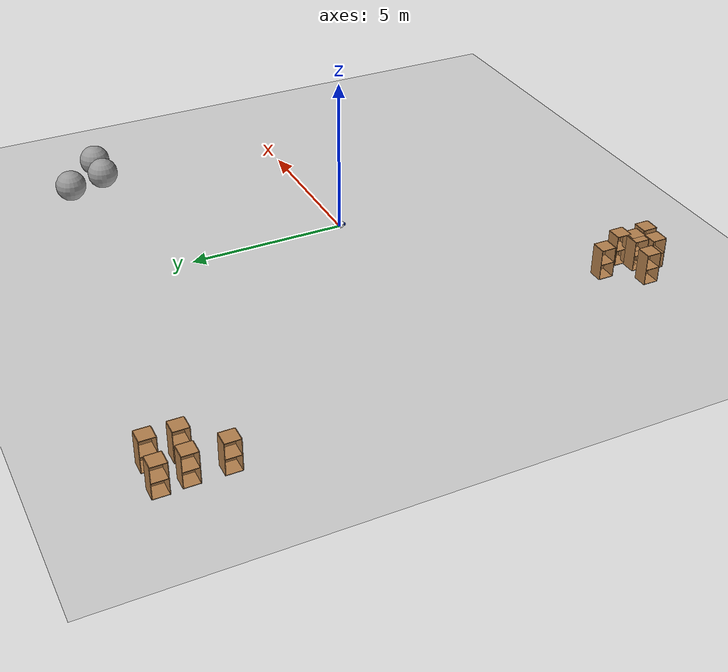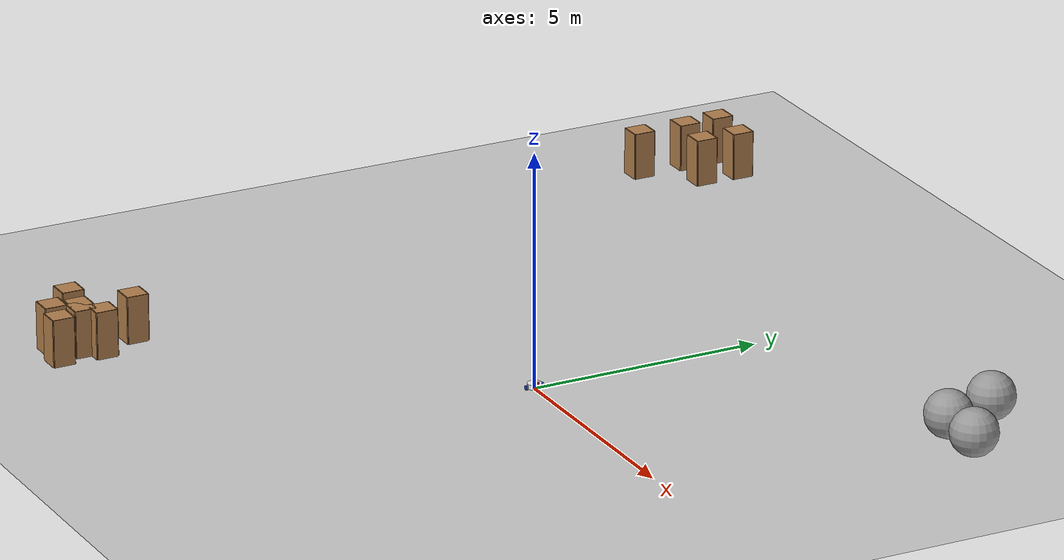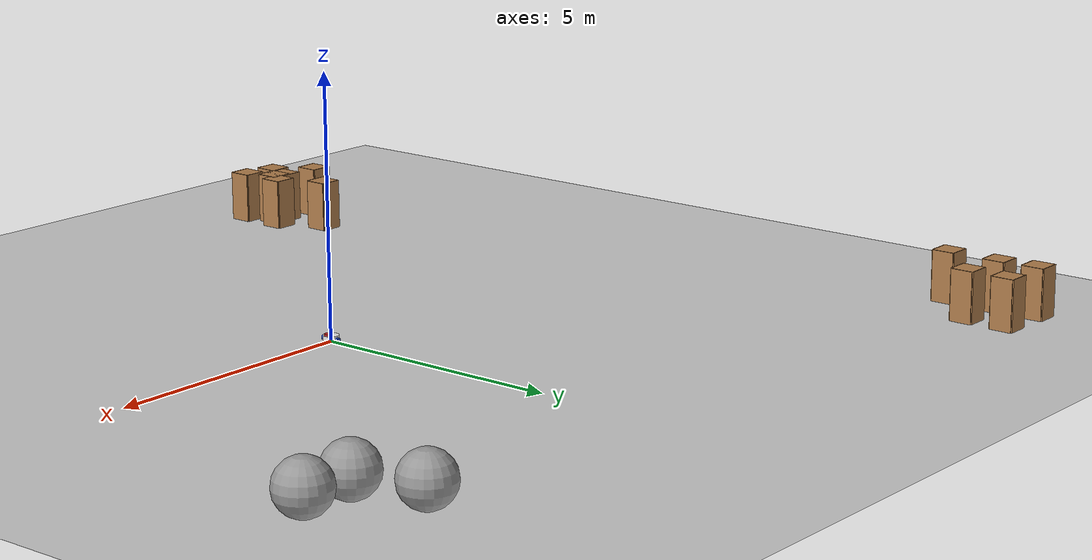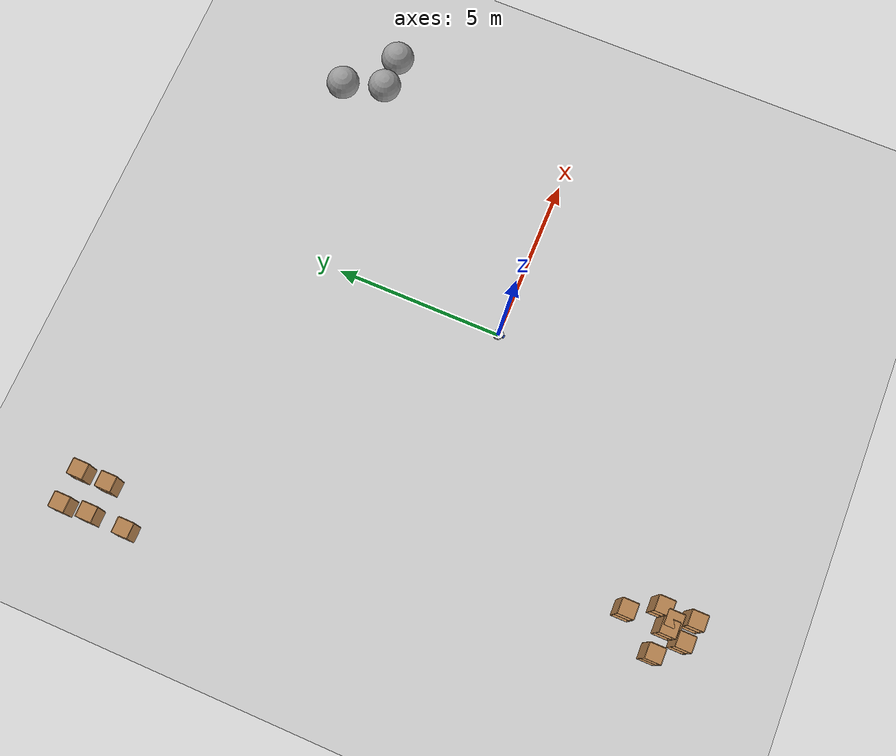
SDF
<sdf version="1.7">
 <world name="default">
  <light name="sun" type="directional">
   <pose>0 0 10 0 -0 0</pose>
   <diffuse>0.8 0.8 0.8 1</diffuse>
   <specular>0.2 0.2 0.2 1</specular>
   <attenuation>
    <range>1000</range>
    <constant>0.9</constant>
    <linear>0.01</linear>
    <quadratic>0.001</quadratic>
   </attenuation>
   <direction>-0.5 0.1 -0.9</direction>
   <spot><inner_angle>0</inner_angle><outer_angle>0</outer_angle><falloff>0</falloff></spot>
  </light>
  <model name="ground_plane">
   <static>1</static>
   <link name="link">
    <collision name="collision">
     <geometry><plane><normal>0 0 1</normal><size>100 100</size></plane></geometry>
     <surface>
      <contact><collide_bitmask>65535</collide_bitmask></contact>
      <friction><ode><mu>100</mu><mu2>50</mu2></ode></friction>
     </surface>
    </collision>
    <visual name="visual">
     <cast_shadows>0</cast_shadows>
     <geometry><plane><normal>0 0 1</normal><size>100 100</size></plane></geometry>
     <material>
      <script><uri>file://media/materials/scripts/gazebo.material</uri><name>Gazebo/Grey</name></script>
     </material>
    </visual>
   </link>
  </model>
  <gravity>0 0 -9.8</gravity>
  <magnetic_field>6e-06 2.3e-05 -4.2e-05</magnetic_field>
  <atmosphere type="adiabatic"/>
  <physics type="ode">
   <max_step_size>0.001</max_step_size>
   <real_time_factor>1</real_time_factor>
   <real_time_update_rate>1000</real_time_update_rate>
  </physics>
  <scene><ambient>0.4 0.4 0.4 1</ambient><background>0.7 0.7 0.7 1</background><shadows>1</shadows></scene>
  <audio><device>default</device></audio>
  <spherical_coordinates>
   <surface_model>EARTH_WGS84</surface_model>
   <latitude_deg>0</latitude_deg>
   <longitude_deg>0</longitude_deg>
   <elevation>0</elevation>
   <heading_deg>0</heading_deg>
  </spherical_coordinates>
  <model name="captain_robot">
   <link name="base_link">
    <inertial>
     <pose>0.0125 0 0.028125 0 -0 0</pose>
     <mass>0.8</mass>
     <inertia>
      <ixx>0.00418469</ixx>
      <ixy>0</ixy>
      <ixz>-0.00071875</ixz>
      <iyy>0.00705969</iyy>
      <iyz>0</iyz>
      <izz>0.008825</izz>
     </inertia>
    </inertial>
    <collision name="base_link_fixed_joint_lump__caster_wheel_b_collision">
     <pose>-0.1 0 0 0 -0 0</pose>
     <geometry><sphere><radius>0.05</radius></sphere></geometry>
     <surface><friction><ode><mu>0.001</mu><mu2>0.001</mu2></ode></friction></surface>
    </collision>
    <collision name="base_link_fixed_joint_lump__caster_wheel_f_collision_1">
     <pose>0.1 0 0 0 -0 0</pose>
     <geometry><sphere><radius>0.05</radius></sphere></geometry>
     <surface><friction><ode><mu>0.001</mu><mu2>0.001</mu2></ode></friction></surface>
    </collision>
    <collision name="base_link_fixed_joint_lump__chassis_collision_2">
     <pose>0 0 0.025 0 -0 0</pose>
     <geometry><cylinder><length>0.1</length><radius>0.15</radius></cylinder></geometry>
    </collision>
    <collision name="base_link_fixed_joint_lump__laser_frame_collision_3">
     <pose>0.1 0 0.1 0 -0 0</pose>
     <geometry><cylinder><length>0.04</length><radius>0.05</radius></cylinder></geometry>
    </collision>
    <visual name="base_link_fixed_joint_lump__caster_wheel_b_visual">
     <pose>-0.1 0 0 0 -0 0</pose>
     <geometry><sphere><radius>0.05</radius></sphere></geometry>
     <material>
      <script><name>Gazebo/Black</name><uri>file://media/materials/scripts/gazebo.material</uri></script>
     </material>
    </visual>
    <visual name="base_link_fixed_joint_lump__caster_wheel_f_visual_1">
     <pose>0.1 0 0 0 -0 0</pose>
     <geometry><sphere><radius>0.05</radius></sphere></geometry>
     <material>
      <script><name>Gazebo/Black</name><uri>file://media/materials/scripts/gazebo.material</uri></script>
     </material>
    </visual>
    <visual name="base_link_fixed_joint_lump__chassis_visual_2">
     <pose>0 0 0.025 0 -0 0</pose>
     <geometry><cylinder><length>0.1</length><radius>0.15</radius></cylinder></geometry>
     <material>
      <script><name>Gazebo/White</name><uri>file://media/materials/scripts/gazebo.material</uri></script>
     </material>
    </visual>
    <visual name="base_link_fixed_joint_lump__laser_frame_visual_3">
     <pose>0.1 0 0.1 0 -0 0</pose>
     <geometry><cylinder><length>0.04</length><radius>0.05</radius></cylinder></geometry>
     <material>
      <script><name>Gazebo/Red</name><uri>file://media/materials/scripts/gazebo.material</uri></script>
     </material>
    </visual>
    <sensor name="laser" type="ray">
     <visualize>1</visualize>
     <update_rate>10</update_rate>
     <ray>
      <scan>
       <horizontal>
        <samples>360</samples>
        <min_angle>-3.14</min_angle>
        <max_angle>3.14</max_angle>
        <resolution>1</resolution>
       </horizontal>
       <vertical><samples>1</samples><min_angle>0</min_angle><max_angle>0</max_angle></vertical>
      </scan>
      <range><min>0.3</min><max>12</max></range>
     </ray>
     <plugin name="laser_controller" filename="libgazebo_ros_ray_sensor.so">
      <ros><argument>--ros-args --remap ~/out:=scan</argument></ros>
      <output_type>sensor_msgs/LaserScan</output_type>
      <frame_name>laser_frame</frame_name>
     </plugin>
     <pose>0.1 0 0.1 0 -0 0</pose>
    </sensor>
   </link>
   <joint name="left_wheel_joint" type="revolute">
    <pose relative_to="base_link">0 0.175 0 -1.5708 0 0</pose>
    <parent>base_link</parent>
    <child>left_wheel</child>
    <axis>
     <xyz>0 0 1</xyz>
     <limit><lower>-1e+16</lower><upper>1e+16</upper></limit>
     <dynamics><spring_reference>0</spring_reference><spring_stiffness>0</spring_stiffness></dynamics>
    </axis>
   </joint>
   <link name="left_wheel">
    <pose relative_to="left_wheel_joint">0 0 0 0 -0 0</pose>
    <inertial>
     <mass>0.1</mass>
     <inertia>
      <ixx>7.58333e-05</ixx>
      <ixy>0</ixy>
      <ixz>0</ixz>
      <iyy>7.58333e-05</iyy>
      <iyz>0</iyz>
      <izz>0.000125</izz>
     </inertia>
    </inertial>
    <collision name="left_wheel_collision">
     <geometry><cylinder><length>0.04</length><radius>0.05</radius></cylinder></geometry>
    </collision>
    <visual name="left_wheel_visual">
     <geometry><cylinder><length>0.04</length><radius>0.05</radius></cylinder></geometry>
     <material>
      <script><name>Gazebo/Blue</name><uri>file://media/materials/scripts/gazebo.material</uri></script>
     </material>
    </visual>
   </link>
   <joint name="right_wheel_joint" type="revolute">
    <pose relative_to="base_link">0 -0.175 0 1.5708 -0 0</pose>
    <parent>base_link</parent>
    <child>right_wheel</child>
    <axis>
     <xyz>0 0 -1</xyz>
     <limit><lower>-1e+16</lower><upper>1e+16</upper></limit>
     <dynamics><spring_reference>0</spring_reference><spring_stiffness>0</spring_stiffness></dynamics>
    </axis>
   </joint>
   <link name="right_wheel">
    <pose relative_to="right_wheel_joint">0 0 0 0 -0 0</pose>
    <inertial>
     <mass>0.1</mass>
     <inertia>
      <ixx>7.58333e-05</ixx>
      <ixy>0</ixy>
      <ixz>0</ixz>
      <iyy>7.58333e-05</iyy>
      <iyz>0</iyz>
      <izz>0.000125</izz>
     </inertia>
    </inertial>
    <collision name="right_wheel_collision">
     <geometry><cylinder><length>0.04</length><radius>0.05</radius></cylinder></geometry>
    </collision>
    <visual name="right_wheel_visual">
     <geometry><cylinder><length>0.04</length><radius>0.05</radius></cylinder></geometry>
     <material>
      <script><name>Gazebo/Blue</name><uri>file://media/materials/scripts/gazebo.material</uri></script>
     </material>
    </visual>
   </link>
   <static>0</static>
   <plugin name="gazebo_ros2_control" filename="libgazebo_ros2_control.so">
    <parameters>/home/ran/robot_ws/src/captain-robot/config/my_controllers.yaml</parameters>
   </plugin>
   <pose>-1e-06 0.000475 0.05 -0 -0 -7.4e-05</pose>
  </model>
  <model name="cabinet">
   <static>1</static>
   <link name="cabinet_bottom_plate">
    <inertial>
     <pose>0 0 -1 0 -0 0</pose>
     <inertia><ixx>2.05</ixx><ixy>0</ixy><ixz>0</ixz><iyy>2.05</iyy><iyz>0</iyz><izz>2.05</izz></inertia>
     <mass>25</mass>
    </inertial>
    <collision name="cabinet_bottom_plate_geom">
     <pose>0 0 0.01 0 -0 0</pose>
     <geometry><box><size>0.45 0.45 0.02</size></box></geometry>
    </collision>
    <visual name="cabinet_bottom_plate_geom_visual">
     <pose>0 0 0.01 0 -0 0</pose>
     <geometry><box><size>0.45 0.45 0.02</size></box></geometry>
     <material>
      <script><uri>file://media/materials/scripts/gazebo.material</uri><name>Gazebo/Wood</name></script>
     </material>
    </visual>
    <collision name="cabinet_bottom_plate_geom_cabinet_back_plate">
     <pose>0.235 0 0.51 0 -0 0</pose>
     <geometry><box><size>0.02 0.45 1.02</size></box></geometry>
    </collision>
    <visual name="cabinet_bottom_plate_geom_cabinet_back_plate_visual">
     <pose>0.235 0 0.51 0 -0 0</pose>
     <geometry><box><size>0.02 0.45 1.02</size></box></geometry>
     <material>
      <script><uri>file://media/materials/scripts/gazebo.material</uri><name>Gazebo/Wood</name></script>
     </material>
    </visual>
    <collision name="cabinet_bottom_plate_geom_cabinet_left_plate">
     <pose>0 0.235 0.51 0 -0 0</pose>
     <geometry><box><size>0.45 0.02 1.02</size></box></geometry>
    </collision>
    <visual name="cabinet_bottom_plate_geom_cabinet_left_plate_visual">
     <pose>0 0.235 0.51 0 -0 0</pose>
     <geometry><box><size>0.45 0.02 1.02</size></box></geometry>
     <material>
      <script><uri>file://media/materials/scripts/gazebo.material</uri><name>Gazebo/Wood</name></script>
     </material>
    </visual>
    <collision name="cabinet_bottom_plate_geom_cabinet_middle_plate">
     <pose>0 0 0.51 0 -0 0</pose>
     <geometry><box><size>0.45 0.45 0.02</size></box></geometry>
    </collision>
    <visual name="cabinet_bottom_plate_geom_cabinet_middle_plate_visual">
     <pose>0 0 0.51 0 -0 0</pose>
     <geometry><box><size>0.45 0.45 0.02</size></box></geometry>
     <material>
      <script><uri>file://media/materials/scripts/gazebo.material</uri><name>Gazebo/Wood</name></script>
     </material>
    </visual>
    <collision name="cabinet_bottom_plate_geom_cabinet_right_plate">
     <pose>0 -0.235 0.51 0 -0 0</pose>
     <geometry><box><size>0.45 0.02 1.02</size></box></geometry>
    </collision>
    <visual name="cabinet_bottom_plate_geom_cabinet_right_plate_visual">
     <pose>0 -0.235 0.51 0 -0 0</pose>
     <geometry><box><size>0.45 0.02 1.02</size></box></geometry>
     <material>
      <script><uri>file://media/materials/scripts/gazebo.material</uri><name>Gazebo/Wood</name></script>
     </material>
    </visual>
    <collision name="cabinet_bottom_plate_geom_cabinet_top_plate">
     <pose>0 0 1.01 0 -0 0</pose>
     <geometry><box><size>0.45 0.45 0.02</size></box></geometry>
    </collision>
    <visual name="cabinet_bottom_plate_geom_cabinet_top_plate_visual">
     <pose>0 0 1.01 0 -0 0</pose>
     <geometry><box><size>0.45 0.45 0.02</size></box></geometry>
     <material>
      <script><uri>file://media/materials/scripts/gazebo.material</uri><name>Gazebo/Wood</name></script>
     </material>
    </visual>
   </link>
   <pose>-8.40541 8.35319 0 0 -0 0</pose>
  </model>
  <model name="cabinet_clone">
   <static>1</static>
   <link name="cabinet_bottom_plate">
    <inertial>
     <pose>0 0 -1 0 -0 0</pose>
     <inertia><ixx>2.05</ixx><ixy>0</ixy><ixz>0</ixz><iyy>2.05</iyy><iyz>0</iyz><izz>2.05</izz></inertia>
     <mass>25</mass>
    </inertial>
    <collision name="cabinet_bottom_plate_geom">
     <pose>0 0 0.01 0 -0 0</pose>
     <geometry><box><size>0.45 0.45 0.02</size></box></geometry>
    </collision>
    <visual name="cabinet_bottom_plate_geom_visual">
     <pose>0 0 0.01 0 -0 0</pose>
     <geometry><box><size>0.45 0.45 0.02</size></box></geometry>
     <material>
      <script><uri>file://media/materials/scripts/gazebo.material</uri><name>Gazebo/Wood</name></script>
     </material>
    </visual>
    <collision name="cabinet_bottom_plate_geom_cabinet_back_plate">
     <pose>0.235 0 0.51 0 -0 0</pose>
     <geometry><box><size>0.02 0.45 1.02</size></box></geometry>
    </collision>
    <visual name="cabinet_bottom_plate_geom_cabinet_back_plate_visual">
     <pose>0.235 0 0.51 0 -0 0</pose>
     <geometry><box><size>0.02 0.45 1.02</size></box></geometry>
     <material>
      <script><uri>file://media/materials/scripts/gazebo.material</uri><name>Gazebo/Wood</name></script>
     </material>
    </visual>
    <collision name="cabinet_bottom_plate_geom_cabinet_left_plate">
     <pose>0 0.235 0.51 0 -0 0</pose>
     <geometry><box><size>0.45 0.02 1.02</size></box></geometry>
    </collision>
    <visual name="cabinet_bottom_plate_geom_cabinet_left_plate_visual">
     <pose>0 0.235 0.51 0 -0 0</pose>
     <geometry><box><size>0.45 0.02 1.02</size></box></geometry>
     <material>
      <script><uri>file://media/materials/scripts/gazebo.material</uri><name>Gazebo/Wood</name></script>
     </material>
    </visual>
    <collision name="cabinet_bottom_plate_geom_cabinet_middle_plate">
     <pose>0 0 0.51 0 -0 0</pose>
     <geometry><box><size>0.45 0.45 0.02</size></box></geometry>
    </collision>
    <visual name="cabinet_bottom_plate_geom_cabinet_middle_plate_visual">
     <pose>0 0 0.51 0 -0 0</pose>
     <geometry><box><size>0.45 0.45 0.02</size></box></geometry>
     <material>
      <script><uri>file://media/materials/scripts/gazebo.material</uri><name>Gazebo/Wood</name></script>
     </material>
    </visual>
    <collision name="cabinet_bottom_plate_geom_cabinet_right_plate">
     <pose>0 -0.235 0.51 0 -0 0</pose>
     <geometry><box><size>0.45 0.02 1.02</size></box></geometry>
    </collision>
    <visual name="cabinet_bottom_plate_geom_cabinet_right_plate_visual">
     <pose>0 -0.235 0.51 0 -0 0</pose>
     <geometry><box><size>0.45 0.02 1.02</size></box></geometry>
     <material>
      <script><uri>file://media/materials/scripts/gazebo.material</uri><name>Gazebo/Wood</name></script>
     </material>
    </visual>
    <collision name="cabinet_bottom_plate_geom_cabinet_top_plate">
     <pose>0 0 1.01 0 -0 0</pose>
     <geometry><box><size>0.45 0.45 0.02</size></box></geometry>
    </collision>
    <visual name="cabinet_bottom_plate_geom_cabinet_top_plate_visual">
     <pose>0 0 1.01 0 -0 0</pose>
     <geometry><box><size>0.45 0.45 0.02</size></box></geometry>
     <material>
      <script><uri>file://media/materials/scripts/gazebo.material</uri><name>Gazebo/Wood</name></script>
     </material>
    </visual>
   </link>
   <pose>-8.39279 9.217 0 0 -0 0</pose>
  </model>
  <model name="cabinet_clone_0">
   <static>1</static>
   <link name="cabinet_bottom_plate">
    <inertial>
     <pose>0 0 -1 0 -0 0</pose>
     <inertia><ixx>2.05</ixx><ixy>0</ixy><ixz>0</ixz><iyy>2.05</iyy><iyz>0</iyz><izz>2.05</izz></inertia>
     <mass>25</mass>
    </inertial>
    <collision name="cabinet_bottom_plate_geom">
     <pose>0 0 0.01 0 -0 0</pose>
     <geometry><box><size>0.45 0.45 0.02</size></box></geometry>
    </collision>
    <visual name="cabinet_bottom_plate_geom_visual">
     <pose>0 0 0.01 0 -0 0</pose>
     <geometry><box><size>0.45 0.45 0.02</size></box></geometry>
     <material>
      <script><uri>file://media/materials/scripts/gazebo.material</uri><name>Gazebo/Wood</name></script>
     </material>
    </visual>
    <collision name="cabinet_bottom_plate_geom_cabinet_back_plate">
     <pose>0.235 0 0.51 0 -0 0</pose>
     <geometry><box><size>0.02 0.45 1.02</size></box></geometry>
    </collision>
    <visual name="cabinet_bottom_plate_geom_cabinet_back_plate_visual">
     <pose>0.235 0 0.51 0 -0 0</pose>
     <geometry><box><size>0.02 0.45 1.02</size></box></geometry>
     <material>
      <script><uri>file://media/materials/scripts/gazebo.material</uri><name>Gazebo/Wood</name></script>
     </material>
    </visual>
    <collision name="cabinet_bottom_plate_geom_cabinet_left_plate">
     <pose>0 0.235 0.51 0 -0 0</pose>
     <geometry><box><size>0.45 0.02 1.02</size></box></geometry>
    </collision>
    <visual name="cabinet_bottom_plate_geom_cabinet_left_plate_visual">
     <pose>0 0.235 0.51 0 -0 0</pose>
     <geometry><box><size>0.45 0.02 1.02</size></box></geometry>
     <material>
      <script><uri>file://media/materials/scripts/gazebo.material</uri><name>Gazebo/Wood</name></script>
     </material>
    </visual>
    <collision name="cabinet_bottom_plate_geom_cabinet_middle_plate">
     <pose>0 0 0.51 0 -0 0</pose>
     <geometry><box><size>0.45 0.45 0.02</size></box></geometry>
    </collision>
    <visual name="cabinet_bottom_plate_geom_cabinet_middle_plate_visual">
     <pose>0 0 0.51 0 -0 0</pose>
     <geometry><box><size>0.45 0.45 0.02</size></box></geometry>
     <material>
      <script><uri>file://media/materials/scripts/gazebo.material</uri><name>Gazebo/Wood</name></script>
     </material>
    </visual>
    <collision name="cabinet_bottom_plate_geom_cabinet_right_plate">
     <pose>0 -0.235 0.51 0 -0 0</pose>
     <geometry><box><size>0.45 0.02 1.02</size></box></geometry>
    </collision>
    <visual name="cabinet_bottom_plate_geom_cabinet_right_plate_visual">
     <pose>0 -0.235 0.51 0 -0 0</pose>
     <geometry><box><size>0.45 0.02 1.02</size></box></geometry>
     <material>
      <script><uri>file://media/materials/scripts/gazebo.material</uri><name>Gazebo/Wood</name></script>
     </material>
    </visual>
    <collision name="cabinet_bottom_plate_geom_cabinet_top_plate">
     <pose>0 0 1.01 0 -0 0</pose>
     <geometry><box><size>0.45 0.45 0.02</size></box></geometry>
    </collision>
    <visual name="cabinet_bottom_plate_geom_cabinet_top_plate_visual">
     <pose>0 0 1.01 0 -0 0</pose>
     <geometry><box><size>0.45 0.45 0.02</size></box></geometry>
     <material>
      <script><uri>file://media/materials/scripts/gazebo.material</uri><name>Gazebo/Wood</name></script>
     </material>
    </visual>
   </link>
   <pose>-9.4073 9.2724 0 0 -0 0</pose>
  </model>
  <model name="cabinet_clone_1">
   <static>1</static>
   <link name="cabinet_bottom_plate">
    <inertial>
     <pose>0 0 -1 0 -0 0</pose>
     <inertia><ixx>2.05</ixx><ixy>0</ixy><ixz>0</ixz><iyy>2.05</iyy><iyz>0</iyz><izz>2.05</izz></inertia>
     <mass>25</mass>
    </inertial>
    <collision name="cabinet_bottom_plate_geom">
     <pose>0 0 0.01 0 -0 0</pose>
     <geometry><box><size>0.45 0.45 0.02</size></box></geometry>
    </collision>
    <visual name="cabinet_bottom_plate_geom_visual">
     <pose>0 0 0.01 0 -0 0</pose>
     <geometry><box><size>0.45 0.45 0.02</size></box></geometry>
     <material>
      <script><uri>file://media/materials/scripts/gazebo.material</uri><name>Gazebo/Wood</name></script>
     </material>
    </visual>
    <collision name="cabinet_bottom_plate_geom_cabinet_back_plate">
     <pose>0.235 0 0.51 0 -0 0</pose>
     <geometry><box><size>0.02 0.45 1.02</size></box></geometry>
    </collision>
    <visual name="cabinet_bottom_plate_geom_cabinet_back_plate_visual">
     <pose>0.235 0 0.51 0 -0 0</pose>
     <geometry><box><size>0.02 0.45 1.02</size></box></geometry>
     <material>
      <script><uri>file://media/materials/scripts/gazebo.material</uri><name>Gazebo/Wood</name></script>
     </material>
    </visual>
    <collision name="cabinet_bottom_plate_geom_cabinet_left_plate">
     <pose>0 0.235 0.51 0 -0 0</pose>
     <geometry><box><size>0.45 0.02 1.02</size></box></geometry>
    </collision>
    <visual name="cabinet_bottom_plate_geom_cabinet_left_plate_visual">
     <pose>0 0.235 0.51 0 -0 0</pose>
     <geometry><box><size>0.45 0.02 1.02</size></box></geometry>
     <material>
      <script><uri>file://media/materials/scripts/gazebo.material</uri><name>Gazebo/Wood</name></script>
     </material>
    </visual>
    <collision name="cabinet_bottom_plate_geom_cabinet_middle_plate">
     <pose>0 0 0.51 0 -0 0</pose>
     <geometry><box><size>0.45 0.45 0.02</size></box></geometry>
    </collision>
    <visual name="cabinet_bottom_plate_geom_cabinet_middle_plate_visual">
     <pose>0 0 0.51 0 -0 0</pose>
     <geometry><box><size>0.45 0.45 0.02</size></box></geometry>
     <material>
      <script><uri>file://media/materials/scripts/gazebo.material</uri><name>Gazebo/Wood</name></script>
     </material>
    </visual>
    <collision name="cabinet_bottom_plate_geom_cabinet_right_plate">
     <pose>0 -0.235 0.51 0 -0 0</pose>
     <geometry><box><size>0.45 0.02 1.02</size></box></geometry>
    </collision>
    <visual name="cabinet_bottom_plate_geom_cabinet_right_plate_visual">
     <pose>0 -0.235 0.51 0 -0 0</pose>
     <geometry><box><size>0.45 0.02 1.02</size></box></geometry>
     <material>
      <script><uri>file://media/materials/scripts/gazebo.material</uri><name>Gazebo/Wood</name></script>
     </material>
    </visual>
    <collision name="cabinet_bottom_plate_geom_cabinet_top_plate">
     <pose>0 0 1.01 0 -0 0</pose>
     <geometry><box><size>0.45 0.45 0.02</size></box></geometry>
    </collision>
    <visual name="cabinet_bottom_plate_geom_cabinet_top_plate_visual">
     <pose>0 0 1.01 0 -0 0</pose>
     <geometry><box><size>0.45 0.45 0.02</size></box></geometry>
     <material>
      <script><uri>file://media/materials/scripts/gazebo.material</uri><name>Gazebo/Wood</name></script>
     </material>
    </visual>
   </link>
   <pose>-9.35804 8.46155 0 0 -0 0</pose>
  </model>
  <model name="cabinet_clone_2">
   <static>1</static>
   <link name="cabinet_bottom_plate">
    <inertial>
     <pose>0 0 -1 0 -0 0</pose>
     <inertia><ixx>2.05</ixx><ixy>0</ixy><ixz>0</ixz><iyy>2.05</iyy><iyz>0</iyz><izz>2.05</izz></inertia>
     <mass>25</mass>
    </inertial>
    <collision name="cabinet_bottom_plate_geom">
     <pose>0 0 0.01 0 -0 0</pose>
     <geometry><box><size>0.45 0.45 0.02</size></box></geometry>
    </collision>
    <visual name="cabinet_bottom_plate_geom_visual">
     <pose>0 0 0.01 0 -0 0</pose>
     <geometry><box><size>0.45 0.45 0.02</size></box></geometry>
     <material>
      <script><uri>file://media/materials/scripts/gazebo.material</uri><name>Gazebo/Wood</name></script>
     </material>
    </visual>
    <collision name="cabinet_bottom_plate_geom_cabinet_back_plate">
     <pose>0.235 0 0.51 0 -0 0</pose>
     <geometry><box><size>0.02 0.45 1.02</size></box></geometry>
    </collision>
    <visual name="cabinet_bottom_plate_geom_cabinet_back_plate_visual">
     <pose>0.235 0 0.51 0 -0 0</pose>
     <geometry><box><size>0.02 0.45 1.02</size></box></geometry>
     <material>
      <script><uri>file://media/materials/scripts/gazebo.material</uri><name>Gazebo/Wood</name></script>
     </material>
    </visual>
    <collision name="cabinet_bottom_plate_geom_cabinet_left_plate">
     <pose>0 0.235 0.51 0 -0 0</pose>
     <geometry><box><size>0.45 0.02 1.02</size></box></geometry>
    </collision>
    <visual name="cabinet_bottom_plate_geom_cabinet_left_plate_visual">
     <pose>0 0.235 0.51 0 -0 0</pose>
     <geometry><box><size>0.45 0.02 1.02</size></box></geometry>
     <material>
      <script><uri>file://media/materials/scripts/gazebo.material</uri><name>Gazebo/Wood</name></script>
     </material>
    </visual>
    <collision name="cabinet_bottom_plate_geom_cabinet_middle_plate">
     <pose>0 0 0.51 0 -0 0</pose>
     <geometry><box><size>0.45 0.45 0.02</size></box></geometry>
    </collision>
    <visual name="cabinet_bottom_plate_geom_cabinet_middle_plate_visual">
     <pose>0 0 0.51 0 -0 0</pose>
     <geometry><box><size>0.45 0.45 0.02</size></box></geometry>
     <material>
      <script><uri>file://media/materials/scripts/gazebo.material</uri><name>Gazebo/Wood</name></script>
     </material>
    </visual>
    <collision name="cabinet_bottom_plate_geom_cabinet_right_plate">
     <pose>0 -0.235 0.51 0 -0 0</pose>
     <geometry><box><size>0.45 0.02 1.02</size></box></geometry>
    </collision>
    <visual name="cabinet_bottom_plate_geom_cabinet_right_plate_visual">
     <pose>0 -0.235 0.51 0 -0 0</pose>
     <geometry><box><size>0.45 0.02 1.02</size></box></geometry>
     <material>
      <script><uri>file://media/materials/scripts/gazebo.material</uri><name>Gazebo/Wood</name></script>
     </material>
    </visual>
    <collision name="cabinet_bottom_plate_geom_cabinet_top_plate">
     <pose>0 0 1.01 0 -0 0</pose>
     <geometry><box><size>0.45 0.45 0.02</size></box></geometry>
    </collision>
    <visual name="cabinet_bottom_plate_geom_cabinet_top_plate_visual">
     <pose>0 0 1.01 0 -0 0</pose>
     <geometry><box><size>0.45 0.45 0.02</size></box></geometry>
     <material>
      <script><uri>file://media/materials/scripts/gazebo.material</uri><name>Gazebo/Wood</name></script>
     </material>
    </visual>
   </link>
   <pose>-9.36181 7.3635 0 0 -0 0</pose>
  </model>
  <model name="cabinet_0">
   <static>1</static>
   <link name="cabinet_bottom_plate">
    <inertial>
     <pose>0 0 -1 0 -0 0</pose>
     <inertia><ixx>2.05</ixx><ixy>0</ixy><ixz>0</ixz><iyy>2.05</iyy><iyz>0</iyz><izz>2.05</izz></inertia>
     <mass>25</mass>
    </inertial>
    <collision name="cabinet_bottom_plate_geom">
     <pose>0 0 0.01 0 -0 0</pose>
     <geometry><box><size>0.45 0.45 0.02</size></box></geometry>
    </collision>
    <visual name="cabinet_bottom_plate_geom_visual">
     <pose>0 0 0.01 0 -0 0</pose>
     <geometry><box><size>0.45 0.45 0.02</size></box></geometry>
     <material>
      <script><uri>file://media/materials/scripts/gazebo.material</uri><name>Gazebo/Wood</name></script>
     </material>
    </visual>
    <collision name="cabinet_bottom_plate_geom_cabinet_back_plate">
     <pose>0.235 0 0.51 0 -0 0</pose>
     <geometry><box><size>0.02 0.45 1.02</size></box></geometry>
    </collision>
    <visual name="cabinet_bottom_plate_geom_cabinet_back_plate_visual">
     <pose>0.235 0 0.51 0 -0 0</pose>
     <geometry><box><size>0.02 0.45 1.02</size></box></geometry>
     <material>
      <script><uri>file://media/materials/scripts/gazebo.material</uri><name>Gazebo/Wood</name></script>
     </material>
    </visual>
    <collision name="cabinet_bottom_plate_geom_cabinet_left_plate">
     <pose>0 0.235 0.51 0 -0 0</pose>
     <geometry><box><size>0.45 0.02 1.02</size></box></geometry>
    </collision>
    <visual name="cabinet_bottom_plate_geom_cabinet_left_plate_visual">
     <pose>0 0.235 0.51 0 -0 0</pose>
     <geometry><box><size>0.45 0.02 1.02</size></box></geometry>
     <material>
      <script><uri>file://media/materials/scripts/gazebo.material</uri><name>Gazebo/Wood</name></script>
     </material>
    </visual>
    <collision name="cabinet_bottom_plate_geom_cabinet_middle_plate">
     <pose>0 0 0.51 0 -0 0</pose>
     <geometry><box><size>0.45 0.45 0.02</size></box></geometry>
    </collision>
    <visual name="cabinet_bottom_plate_geom_cabinet_middle_plate_visual">
     <pose>0 0 0.51 0 -0 0</pose>
     <geometry><box><size>0.45 0.45 0.02</size></box></geometry>
     <material>
      <script><uri>file://media/materials/scripts/gazebo.material</uri><name>Gazebo/Wood</name></script>
     </material>
    </visual>
    <collision name="cabinet_bottom_plate_geom_cabinet_right_plate">
     <pose>0 -0.235 0.51 0 -0 0</pose>
     <geometry><box><size>0.45 0.02 1.02</size></box></geometry>
    </collision>
    <visual name="cabinet_bottom_plate_geom_cabinet_right_plate_visual">
     <pose>0 -0.235 0.51 0 -0 0</pose>
     <geometry><box><size>0.45 0.02 1.02</size></box></geometry>
     <material>
      <script><uri>file://media/materials/scripts/gazebo.material</uri><name>Gazebo/Wood</name></script>
     </material>
    </visual>
    <collision name="cabinet_bottom_plate_geom_cabinet_top_plate">
     <pose>0 0 1.01 0 -0 0</pose>
     <geometry><box><size>0.45 0.45 0.02</size></box></geometry>
    </collision>
    <visual name="cabinet_bottom_plate_geom_cabinet_top_plate_visual">
     <pose>0 0 1.01 0 -0 0</pose>
     <geometry><box><size>0.45 0.45 0.02</size></box></geometry>
     <material>
      <script><uri>file://media/materials/scripts/gazebo.material</uri><name>Gazebo/Wood</name></script>
     </material>
    </visual>
   </link>
   <pose>-6.02695 -7.18914 0 0 -0 0</pose>
  </model>
  <model name="cabinet_0_clone">
   <static>1</static>
   <link name="cabinet_bottom_plate">
    <inertial>
     <pose>0 0 -1 0 -0 0</pose>
     <inertia><ixx>2.05</ixx><ixy>0</ixy><ixz>0</ixz><iyy>2.05</iyy><iyz>0</iyz><izz>2.05</izz></inertia>
     <mass>25</mass>
    </inertial>
    <collision name="cabinet_bottom_plate_geom">
     <pose>0 0 0.01 0 -0 0</pose>
     <geometry><box><size>0.45 0.45 0.02</size></box></geometry>
    </collision>
    <visual name="cabinet_bottom_plate_geom_visual">
     <pose>0 0 0.01 0 -0 0</pose>
     <geometry><box><size>0.45 0.45 0.02</size></box></geometry>
     <material>
      <script><uri>file://media/materials/scripts/gazebo.material</uri><name>Gazebo/Wood</name></script>
     </material>
    </visual>
    <collision name="cabinet_bottom_plate_geom_cabinet_back_plate">
     <pose>0.235 0 0.51 0 -0 0</pose>
     <geometry><box><size>0.02 0.45 1.02</size></box></geometry>
    </collision>
    <visual name="cabinet_bottom_plate_geom_cabinet_back_plate_visual">
     <pose>0.235 0 0.51 0 -0 0</pose>
     <geometry><box><size>0.02 0.45 1.02</size></box></geometry>
     <material>
      <script><uri>file://media/materials/scripts/gazebo.material</uri><name>Gazebo/Wood</name></script>
     </material>
    </visual>
    <collision name="cabinet_bottom_plate_geom_cabinet_left_plate">
     <pose>0 0.235 0.51 0 -0 0</pose>
     <geometry><box><size>0.45 0.02 1.02</size></box></geometry>
    </collision>
    <visual name="cabinet_bottom_plate_geom_cabinet_left_plate_visual">
     <pose>0 0.235 0.51 0 -0 0</pose>
     <geometry><box><size>0.45 0.02 1.02</size></box></geometry>
     <material>
      <script><uri>file://media/materials/scripts/gazebo.material</uri><name>Gazebo/Wood</name></script>
     </material>
    </visual>
    <collision name="cabinet_bottom_plate_geom_cabinet_middle_plate">
     <pose>0 0 0.51 0 -0 0</pose>
     <geometry><box><size>0.45 0.45 0.02</size></box></geometry>
    </collision>
    <visual name="cabinet_bottom_plate_geom_cabinet_middle_plate_visual">
     <pose>0 0 0.51 0 -0 0</pose>
     <geometry><box><size>0.45 0.45 0.02</size></box></geometry>
     <material>
      <script><uri>file://media/materials/scripts/gazebo.material</uri><name>Gazebo/Wood</name></script>
     </material>
    </visual>
    <collision name="cabinet_bottom_plate_geom_cabinet_right_plate">
     <pose>0 -0.235 0.51 0 -0 0</pose>
     <geometry><box><size>0.45 0.02 1.02</size></box></geometry>
    </collision>
    <visual name="cabinet_bottom_plate_geom_cabinet_right_plate_visual">
     <pose>0 -0.235 0.51 0 -0 0</pose>
     <geometry><box><size>0.45 0.02 1.02</size></box></geometry>
     <material>
      <script><uri>file://media/materials/scripts/gazebo.material</uri><name>Gazebo/Wood</name></script>
     </material>
    </visual>
    <collision name="cabinet_bottom_plate_geom_cabinet_top_plate">
     <pose>0 0 1.01 0 -0 0</pose>
     <geometry><box><size>0.45 0.45 0.02</size></box></geometry>
    </collision>
    <visual name="cabinet_bottom_plate_geom_cabinet_top_plate_visual">
     <pose>0 0 1.01 0 -0 0</pose>
     <geometry><box><size>0.45 0.45 0.02</size></box></geometry>
     <material>
      <script><uri>file://media/materials/scripts/gazebo.material</uri><name>Gazebo/Wood</name></script>
     </material>
    </visual>
   </link>
   <pose>-5.56357 -7.82114 0 0 -0 0</pose>
  </model>
  <model name="cabinet_0_clone_0">
   <static>1</static>
   <link name="cabinet_bottom_plate">
    <inertial>
     <pose>0 0 -1 0 -0 0</pose>
     <inertia><ixx>2.05</ixx><ixy>0</ixy><ixz>0</ixz><iyy>2.05</iyy><iyz>0</iyz><izz>2.05</izz></inertia>
     <mass>25</mass>
    </inertial>
    <collision name="cabinet_bottom_plate_geom">
     <pose>0 0 0.01 0 -0 0</pose>
     <geometry><box><size>0.45 0.45 0.02</size></box></geometry>
    </collision>
    <visual name="cabinet_bottom_plate_geom_visual">
     <pose>0 0 0.01 0 -0 0</pose>
     <geometry><box><size>0.45 0.45 0.02</size></box></geometry>
     <material>
      <script><uri>file://media/materials/scripts/gazebo.material</uri><name>Gazebo/Wood</name></script>
     </material>
    </visual>
    <collision name="cabinet_bottom_plate_geom_cabinet_back_plate">
     <pose>0.235 0 0.51 0 -0 0</pose>
     <geometry><box><size>0.02 0.45 1.02</size></box></geometry>
    </collision>
    <visual name="cabinet_bottom_plate_geom_cabinet_back_plate_visual">
     <pose>0.235 0 0.51 0 -0 0</pose>
     <geometry><box><size>0.02 0.45 1.02</size></box></geometry>
     <material>
      <script><uri>file://media/materials/scripts/gazebo.material</uri><name>Gazebo/Wood</name></script>
     </material>
    </visual>
    <collision name="cabinet_bottom_plate_geom_cabinet_left_plate">
     <pose>0 0.235 0.51 0 -0 0</pose>
     <geometry><box><size>0.45 0.02 1.02</size></box></geometry>
    </collision>
    <visual name="cabinet_bottom_plate_geom_cabinet_left_plate_visual">
     <pose>0 0.235 0.51 0 -0 0</pose>
     <geometry><box><size>0.45 0.02 1.02</size></box></geometry>
     <material>
      <script><uri>file://media/materials/scripts/gazebo.material</uri><name>Gazebo/Wood</name></script>
     </material>
    </visual>
    <collision name="cabinet_bottom_plate_geom_cabinet_middle_plate">
     <pose>0 0 0.51 0 -0 0</pose>
     <geometry><box><size>0.45 0.45 0.02</size></box></geometry>
    </collision>
    <visual name="cabinet_bottom_plate_geom_cabinet_middle_plate_visual">
     <pose>0 0 0.51 0 -0 0</pose>
     <geometry><box><size>0.45 0.45 0.02</size></box></geometry>
     <material>
      <script><uri>file://media/materials/scripts/gazebo.material</uri><name>Gazebo/Wood</name></script>
     </material>
    </visual>
    <collision name="cabinet_bottom_plate_geom_cabinet_right_plate">
     <pose>0 -0.235 0.51 0 -0 0</pose>
     <geometry><box><size>0.45 0.02 1.02</size></box></geometry>
    </collision>
    <visual name="cabinet_bottom_plate_geom_cabinet_right_plate_visual">
     <pose>0 -0.235 0.51 0 -0 0</pose>
     <geometry><box><size>0.45 0.02 1.02</size></box></geometry>
     <material>
      <script><uri>file://media/materials/scripts/gazebo.material</uri><name>Gazebo/Wood</name></script>
     </material>
    </visual>
    <collision name="cabinet_bottom_plate_geom_cabinet_top_plate">
     <pose>0 0 1.01 0 -0 0</pose>
     <geometry><box><size>0.45 0.45 0.02</size></box></geometry>
    </collision>
    <visual name="cabinet_bottom_plate_geom_cabinet_top_plate_visual">
     <pose>0 0 1.01 0 -0 0</pose>
     <geometry><box><size>0.45 0.45 0.02</size></box></geometry>
     <material>
      <script><uri>file://media/materials/scripts/gazebo.material</uri><name>Gazebo/Wood</name></script>
     </material>
    </visual>
   </link>
   <pose>-6.21084 -7.6981 0 0 -0 0</pose>
  </model>
  <model name="cabinet_0_clone_1">
   <static>1</static>
   <link name="cabinet_bottom_plate">
    <inertial>
     <pose>0 0 -1 0 -0 0</pose>
     <inertia><ixx>2.05</ixx><ixy>0</ixy><ixz>0</ixz><iyy>2.05</iyy><iyz>0</iyz><izz>2.05</izz></inertia>
     <mass>25</mass>
    </inertial>
    <collision name="cabinet_bottom_plate_geom">
     <pose>0 0 0.01 0 -0 0</pose>
     <geometry><box><size>0.45 0.45 0.02</size></box></geometry>
    </collision>
    <visual name="cabinet_bottom_plate_geom_visual">
     <pose>0 0 0.01 0 -0 0</pose>
     <geometry><box><size>0.45 0.45 0.02</size></box></geometry>
     <material>
      <script><uri>file://media/materials/scripts/gazebo.material</uri><name>Gazebo/Wood</name></script>
     </material>
    </visual>
    <collision name="cabinet_bottom_plate_geom_cabinet_back_plate">
     <pose>0.235 0 0.51 0 -0 0</pose>
     <geometry><box><size>0.02 0.45 1.02</size></box></geometry>
    </collision>
    <visual name="cabinet_bottom_plate_geom_cabinet_back_plate_visual">
     <pose>0.235 0 0.51 0 -0 0</pose>
     <geometry><box><size>0.02 0.45 1.02</size></box></geometry>
     <material>
      <script><uri>file://media/materials/scripts/gazebo.material</uri><name>Gazebo/Wood</name></script>
     </material>
    </visual>
    <collision name="cabinet_bottom_plate_geom_cabinet_left_plate">
     <pose>0 0.235 0.51 0 -0 0</pose>
     <geometry><box><size>0.45 0.02 1.02</size></box></geometry>
    </collision>
    <visual name="cabinet_bottom_plate_geom_cabinet_left_plate_visual">
     <pose>0 0.235 0.51 0 -0 0</pose>
     <geometry><box><size>0.45 0.02 1.02</size></box></geometry>
     <material>
      <script><uri>file://media/materials/scripts/gazebo.material</uri><name>Gazebo/Wood</name></script>
     </material>
    </visual>
    <collision name="cabinet_bottom_plate_geom_cabinet_middle_plate">
     <pose>0 0 0.51 0 -0 0</pose>
     <geometry><box><size>0.45 0.45 0.02</size></box></geometry>
    </collision>
    <visual name="cabinet_bottom_plate_geom_cabinet_middle_plate_visual">
     <pose>0 0 0.51 0 -0 0</pose>
     <geometry><box><size>0.45 0.45 0.02</size></box></geometry>
     <material>
      <script><uri>file://media/materials/scripts/gazebo.material</uri><name>Gazebo/Wood</name></script>
     </material>
    </visual>
    <collision name="cabinet_bottom_plate_geom_cabinet_right_plate">
     <pose>0 -0.235 0.51 0 -0 0</pose>
     <geometry><box><size>0.45 0.02 1.02</size></box></geometry>
    </collision>
    <visual name="cabinet_bottom_plate_geom_cabinet_right_plate_visual">
     <pose>0 -0.235 0.51 0 -0 0</pose>
     <geometry><box><size>0.45 0.02 1.02</size></box></geometry>
     <material>
      <script><uri>file://media/materials/scripts/gazebo.material</uri><name>Gazebo/Wood</name></script>
     </material>
    </visual>
    <collision name="cabinet_bottom_plate_geom_cabinet_top_plate">
     <pose>0 0 1.01 0 -0 0</pose>
     <geometry><box><size>0.45 0.45 0.02</size></box></geometry>
    </collision>
    <visual name="cabinet_bottom_plate_geom_cabinet_top_plate_visual">
     <pose>0 0 1.01 0 -0 0</pose>
     <geometry><box><size>0.45 0.45 0.02</size></box></geometry>
     <material>
      <script><uri>file://media/materials/scripts/gazebo.material</uri><name>Gazebo/Wood</name></script>
     </material>
    </visual>
   </link>
   <pose>-6.80732 -7.05487 0 0 -0 0</pose>
  </model>
  <model name="cabinet_0_clone_2">
   <static>1</static>
   <link name="cabinet_bottom_plate">
    <inertial>
     <pose>0 0 -1 0 -0 0</pose>
     <inertia><ixx>2.05</ixx><ixy>0</ixy><ixz>0</ixz><iyy>2.05</iyy><iyz>0</iyz><izz>2.05</izz></inertia>
     <mass>25</mass>
    </inertial>
    <collision name="cabinet_bottom_plate_geom">
     <pose>0 0 0.01 0 -0 0</pose>
     <geometry><box><size>0.45 0.45 0.02</size></box></geometry>
    </collision>
    <visual name="cabinet_bottom_plate_geom_visual">
     <pose>0 0 0.01 0 -0 0</pose>
     <geometry><box><size>0.45 0.45 0.02</size></box></geometry>
     <material>
      <script><uri>file://media/materials/scripts/gazebo.material</uri><name>Gazebo/Wood</name></script>
     </material>
    </visual>
    <collision name="cabinet_bottom_plate_geom_cabinet_back_plate">
     <pose>0.235 0 0.51 0 -0 0</pose>
     <geometry><box><size>0.02 0.45 1.02</size></box></geometry>
    </collision>
    <visual name="cabinet_bottom_plate_geom_cabinet_back_plate_visual">
     <pose>0.235 0 0.51 0 -0 0</pose>
     <geometry><box><size>0.02 0.45 1.02</size></box></geometry>
     <material>
      <script><uri>file://media/materials/scripts/gazebo.material</uri><name>Gazebo/Wood</name></script>
     </material>
    </visual>
    <collision name="cabinet_bottom_plate_geom_cabinet_left_plate">
     <pose>0 0.235 0.51 0 -0 0</pose>
     <geometry><box><size>0.45 0.02 1.02</size></box></geometry>
    </collision>
    <visual name="cabinet_bottom_plate_geom_cabinet_left_plate_visual">
     <pose>0 0.235 0.51 0 -0 0</pose>
     <geometry><box><size>0.45 0.02 1.02</size></box></geometry>
     <material>
      <script><uri>file://media/materials/scripts/gazebo.material</uri><name>Gazebo/Wood</name></script>
     </material>
    </visual>
    <collision name="cabinet_bottom_plate_geom_cabinet_middle_plate">
     <pose>0 0 0.51 0 -0 0</pose>
     <geometry><box><size>0.45 0.45 0.02</size></box></geometry>
    </collision>
    <visual name="cabinet_bottom_plate_geom_cabinet_middle_plate_visual">
     <pose>0 0 0.51 0 -0 0</pose>
     <geometry><box><size>0.45 0.45 0.02</size></box></geometry>
     <material>
      <script><uri>file://media/materials/scripts/gazebo.material</uri><name>Gazebo/Wood</name></script>
     </material>
    </visual>
    <collision name="cabinet_bottom_plate_geom_cabinet_right_plate">
     <pose>0 -0.235 0.51 0 -0 0</pose>
     <geometry><box><size>0.45 0.02 1.02</size></box></geometry>
    </collision>
    <visual name="cabinet_bottom_plate_geom_cabinet_right_plate_visual">
     <pose>0 -0.235 0.51 0 -0 0</pose>
     <geometry><box><size>0.45 0.02 1.02</size></box></geometry>
     <material>
      <script><uri>file://media/materials/scripts/gazebo.material</uri><name>Gazebo/Wood</name></script>
     </material>
    </visual>
    <collision name="cabinet_bottom_plate_geom_cabinet_top_plate">
     <pose>0 0 1.01 0 -0 0</pose>
     <geometry><box><size>0.45 0.45 0.02</size></box></geometry>
    </collision>
    <visual name="cabinet_bottom_plate_geom_cabinet_top_plate_visual">
     <pose>0 0 1.01 0 -0 0</pose>
     <geometry><box><size>0.45 0.45 0.02</size></box></geometry>
     <material>
      <script><uri>file://media/materials/scripts/gazebo.material</uri><name>Gazebo/Wood</name></script>
     </material>
    </visual>
   </link>
   <pose>-6 -6 0 0 -0 0</pose>
  </model>
  <model name="cabinet_0_clone_2_clone">
   <static>1</static>
   <link name="cabinet_bottom_plate">
    <inertial>
     <pose>0 0 -1 0 -0 0</pose>
     <inertia><ixx>2.05</ixx><ixy>0</ixy><ixz>0</ixz><iyy>2.05</iyy><iyz>0</iyz><izz>2.05</izz></inertia>
     <mass>25</mass>
    </inertial>
    <collision name="cabinet_bottom_plate_geom">
     <pose>0 0 0.01 0 -0 0</pose>
     <geometry><box><size>0.45 0.45 0.02</size></box></geometry>
    </collision>
    <visual name="cabinet_bottom_plate_geom_visual">
     <pose>0 0 0.01 0 -0 0</pose>
     <geometry><box><size>0.45 0.45 0.02</size></box></geometry>
     <material>
      <script><uri>file://media/materials/scripts/gazebo.material</uri><name>Gazebo/Wood</name></script>
     </material>
    </visual>
    <collision name="cabinet_bottom_plate_geom_cabinet_back_plate">
     <pose>0.235 0 0.51 0 -0 0</pose>
     <geometry><box><size>0.02 0.45 1.02</size></box></geometry>
    </collision>
    <visual name="cabinet_bottom_plate_geom_cabinet_back_plate_visual">
     <pose>0.235 0 0.51 0 -0 0</pose>
     <geometry><box><size>0.02 0.45 1.02</size></box></geometry>
     <material>
      <script><uri>file://media/materials/scripts/gazebo.material</uri><name>Gazebo/Wood</name></script>
     </material>
    </visual>
    <collision name="cabinet_bottom_plate_geom_cabinet_left_plate">
     <pose>0 0.235 0.51 0 -0 0</pose>
     <geometry><box><size>0.45 0.02 1.02</size></box></geometry>
    </collision>
    <visual name="cabinet_bottom_plate_geom_cabinet_left_plate_visual">
     <pose>0 0.235 0.51 0 -0 0</pose>
     <geometry><box><size>0.45 0.02 1.02</size></box></geometry>
     <material>
      <script><uri>file://media/materials/scripts/gazebo.material</uri><name>Gazebo/Wood</name></script>
     </material>
    </visual>
    <collision name="cabinet_bottom_plate_geom_cabinet_middle_plate">
     <pose>0 0 0.51 0 -0 0</pose>
     <geometry><box><size>0.45 0.45 0.02</size></box></geometry>
    </collision>
    <visual name="cabinet_bottom_plate_geom_cabinet_middle_plate_visual">
     <pose>0 0 0.51 0 -0 0</pose>
     <geometry><box><size>0.45 0.45 0.02</size></box></geometry>
     <material>
      <script><uri>file://media/materials/scripts/gazebo.material</uri><name>Gazebo/Wood</name></script>
     </material>
    </visual>
    <collision name="cabinet_bottom_plate_geom_cabinet_right_plate">
     <pose>0 -0.235 0.51 0 -0 0</pose>
     <geometry><box><size>0.45 0.02 1.02</size></box></geometry>
    </collision>
    <visual name="cabinet_bottom_plate_geom_cabinet_right_plate_visual">
     <pose>0 -0.235 0.51 0 -0 0</pose>
     <geometry><box><size>0.45 0.02 1.02</size></box></geometry>
     <material>
      <script><uri>file://media/materials/scripts/gazebo.material</uri><name>Gazebo/Wood</name></script>
     </material>
    </visual>
    <collision name="cabinet_bottom_plate_geom_cabinet_top_plate">
     <pose>0 0 1.01 0 -0 0</pose>
     <geometry><box><size>0.45 0.45 0.02</size></box></geometry>
    </collision>
    <visual name="cabinet_bottom_plate_geom_cabinet_top_plate_visual">
     <pose>0 0 1.01 0 -0 0</pose>
     <geometry><box><size>0.45 0.45 0.02</size></box></geometry>
     <material>
      <script><uri>file://media/materials/scripts/gazebo.material</uri><name>Gazebo/Wood</name></script>
     </material>
    </visual>
   </link>
   <pose>-5.54432 -6.88174 0 0 -0 0</pose>
  </model>
  <model name="cabinet_0_clone_2_clone_0">
   <static>1</static>
   <link name="cabinet_bottom_plate">
    <inertial>
     <pose>0 0 -1 0 -0 0</pose>
     <inertia><ixx>2.05</ixx><ixy>0</ixy><ixz>0</ixz><iyy>2.05</iyy><iyz>0</iyz><izz>2.05</izz></inertia>
     <mass>25</mass>
    </inertial>
    <collision name="cabinet_bottom_plate_geom">
     <pose>0 0 0.01 0 -0 0</pose>
     <geometry><box><size>0.45 0.45 0.02</size></box></geometry>
    </collision>
    <visual name="cabinet_bottom_plate_geom_visual">
     <pose>0 0 0.01 0 -0 0</pose>
     <geometry><box><size>0.45 0.45 0.02</size></box></geometry>
     <material>
      <script><uri>file://media/materials/scripts/gazebo.material</uri><name>Gazebo/Wood</name></script>
     </material>
    </visual>
    <collision name="cabinet_bottom_plate_geom_cabinet_back_plate">
     <pose>0.235 0 0.51 0 -0 0</pose>
     <geometry><box><size>0.02 0.45 1.02</size></box></geometry>
    </collision>
    <visual name="cabinet_bottom_plate_geom_cabinet_back_plate_visual">
     <pose>0.235 0 0.51 0 -0 0</pose>
     <geometry><box><size>0.02 0.45 1.02</size></box></geometry>
     <material>
      <script><uri>file://media/materials/scripts/gazebo.material</uri><name>Gazebo/Wood</name></script>
     </material>
    </visual>
    <collision name="cabinet_bottom_plate_geom_cabinet_left_plate">
     <pose>0 0.235 0.51 0 -0 0</pose>
     <geometry><box><size>0.45 0.02 1.02</size></box></geometry>
    </collision>
    <visual name="cabinet_bottom_plate_geom_cabinet_left_plate_visual">
     <pose>0 0.235 0.51 0 -0 0</pose>
     <geometry><box><size>0.45 0.02 1.02</size></box></geometry>
     <material>
      <script><uri>file://media/materials/scripts/gazebo.material</uri><name>Gazebo/Wood</name></script>
     </material>
    </visual>
    <collision name="cabinet_bottom_plate_geom_cabinet_middle_plate">
     <pose>0 0 0.51 0 -0 0</pose>
     <geometry><box><size>0.45 0.45 0.02</size></box></geometry>
    </collision>
    <visual name="cabinet_bottom_plate_geom_cabinet_middle_plate_visual">
     <pose>0 0 0.51 0 -0 0</pose>
     <geometry><box><size>0.45 0.45 0.02</size></box></geometry>
     <material>
      <script><uri>file://media/materials/scripts/gazebo.material</uri><name>Gazebo/Wood</name></script>
     </material>
    </visual>
    <collision name="cabinet_bottom_plate_geom_cabinet_right_plate">
     <pose>0 -0.235 0.51 0 -0 0</pose>
     <geometry><box><size>0.45 0.02 1.02</size></box></geometry>
    </collision>
    <visual name="cabinet_bottom_plate_geom_cabinet_right_plate_visual">
     <pose>0 -0.235 0.51 0 -0 0</pose>
     <geometry><box><size>0.45 0.02 1.02</size></box></geometry>
     <material>
      <script><uri>file://media/materials/scripts/gazebo.material</uri><name>Gazebo/Wood</name></script>
     </material>
    </visual>
    <collision name="cabinet_bottom_plate_geom_cabinet_top_plate">
     <pose>0 0 1.01 0 -0 0</pose>
     <geometry><box><size>0.45 0.45 0.02</size></box></geometry>
    </collision>
    <visual name="cabinet_bottom_plate_geom_cabinet_top_plate_visual">
     <pose>0 0 1.01 0 -0 0</pose>
     <geometry><box><size>0.45 0.45 0.02</size></box></geometry>
     <material>
      <script><uri>file://media/materials/scripts/gazebo.material</uri><name>Gazebo/Wood</name></script>
     </material>
    </visual>
   </link>
   <pose>-5.79083 -7.23632 0 0 -0 0</pose>
  </model>
  <model name="unit_sphere">
   <pose>5.46011 7.29223 0.5 0 -0 0</pose>
   <link name="link">
    <inertial>
     <mass>1</mass>
     <inertia><ixx>0.1</ixx><ixy>0</ixy><ixz>0</ixz><iyy>0.1</iyy><iyz>0</iyz><izz>0.1</izz></inertia>
    </inertial>
    <collision name="collision"><geometry><sphere><radius>0.5</radius></sphere></geometry></collision>
    <visual name="visual">
     <geometry><sphere><radius>0.5</radius></sphere></geometry>
     <material>
      <script><name>Gazebo/Grey</name><uri>file://media/materials/scripts/gazebo.material</uri></script>
     </material>
    </visual>
   </link>
  </model>
  <model name="unit_sphere_clone">
   <pose>5.85785 6.08597 0.5 -0.000175 -0.010047 1.5e-05</pose>
   <link name="link">
    <inertial>
     <mass>1</mass>
     <inertia><ixx>0.1</ixx><ixy>0</ixy><ixz>0</ixz><iyy>0.1</iyy><iyz>0</iyz><izz>0.1</izz></inertia>
    </inertial>
    <collision name="collision"><geometry><sphere><radius>0.5</radius></sphere></geometry></collision>
    <visual name="visual">
     <geometry><sphere><radius>0.5</radius></sphere></geometry>
     <material>
      <script><name>Gazebo/Grey</name><uri>file://media/materials/scripts/gazebo.material</uri></script>
     </material>
    </visual>
   </link>
  </model>
  <model name="unit_sphere_clone_0">
   <pose>6.86775 6.07261 0.5 0.000188 0.010011 1.5e-05</pose>
   <link name="link">
    <inertial>
     <mass>1</mass>
     <inertia><ixx>0.1</ixx><ixy>0</ixy><ixz>0</ixz><iyy>0.1</iyy><iyz>0</iyz><izz>0.1</izz></inertia>
    </inertial>
    <collision name="collision"><geometry><sphere><radius>0.5</radius></sphere></geometry></collision>
    <visual name="visual">
     <geometry><sphere><radius>0.5</radius></sphere></geometry>
     <material>
      <script><name>Gazebo/Grey</name><uri>file://media/materials/scripts/gazebo.material</uri></script>
     </material>
    </visual>
   </link>
  </model>
 </world>
</sdf>
